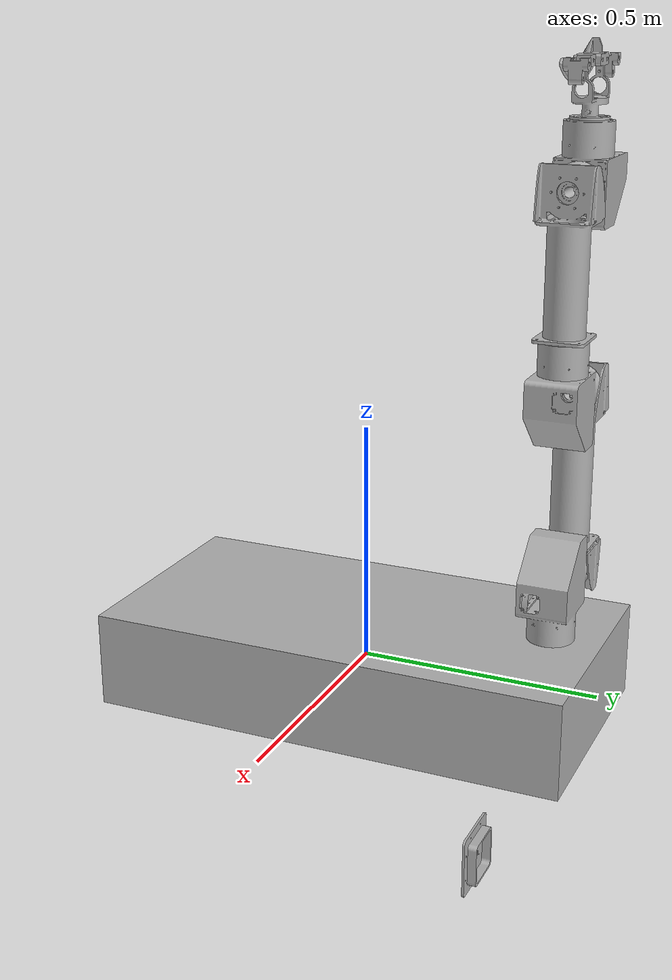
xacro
<?xml version="1.0" ?>
<robot name="onyx" xmlns:xacro="http://www.ros.org/wiki/xacro">

<xacro:include filename="$(find new_description)/urdf/materials.xacro" />
<xacro:include filename="$(find new_description)/urdf/onyx.gazebo" />
<xacro:include filename="$(find rover_description)/description/gazebo.ros2_control.xacro" />

<xacro:property name="rpm_to_Radps" value="${2*pi/60.0}" />     <!-- rotations per minute to Rad per second conversion -->
<xacro:property name="velocity_scaling" value="1.0" />     <!-- allows to scale all max velocities down at once -->

<xacro:macro name="aaa_joint_limits" params="lower:=0.0 upper:=0.0 velocity:=${rpm_to_Radps} effort:=100.0">
  <limit lower="${lower}" upper="${upper}" velocity="${velocity}" effort="${effort}"/>
</xacro:macro>

<xacro:property name="joint1_limits">
  <xacro:aaa_joint_limits lower="${-2*pi}" upper="${2*pi}" velocity="${1.83 * rpm_to_Radps * velocity_scaling}" />
</xacro:property>

<xacro:property name="joint2_limits">
  <xacro:aaa_joint_limits lower="${-pi}" upper="${pi}" velocity="${1.377 * rpm_to_Radps * velocity_scaling}" />
</xacro:property>

<xacro:property name="joint3_limits">
  <xacro:aaa_joint_limits lower="${-pi}" upper="${pi}" velocity="${1.377 * rpm_to_Radps * velocity_scaling}" />
</xacro:property>

<xacro:property name="joint4_limits">
  <xacro:aaa_joint_limits lower="${-2*pi}" upper="${2*pi}" velocity="${1.83 * rpm_to_Radps * velocity_scaling}" />
</xacro:property>

<xacro:property name="joint5_limits">
  <xacro:aaa_joint_limits lower="${-pi}" upper="${pi}" velocity="${1.83 * rpm_to_Radps * velocity_scaling}" />
</xacro:property>

<xacro:property name="joint6_limits">
  <xacro:aaa_joint_limits lower="${-2*pi}" upper="${2*pi}" velocity="${1.83 * rpm_to_Radps * velocity_scaling}" />
</xacro:property>

<link name="base_link">
  <inertial>
    <origin xyz="0 0 0" rpy="0 0 0"/>
    <mass value="10"/>
    <inertia ixx="0.866667" iyy="0.241667" izz="11.4583" ixy="0" iyz="0" ixz="0"/>
  </inertial>
  <visual>
    <origin xyz="0 0 0" rpy="0 0 0"/>
    <geometry>
      <box size="0.5 1 0.2"/>
    </geometry>
    <material name="silver"/>
  </visual>
  <collision>
    <origin xyz="0 0 0" rpy="0 0 0"/>
    <geometry>
      <box size="0.5 1 0.2"/>
    </geometry>
  </collision>
</link>

<link name="link0">
  <inertial>
    <origin xyz="1.1956123958086707e-13 -3.565798973482466e-17 0.006224605561972922" rpy="0 0 0"/>
    <mass value="1.001112718637754"/>
    <inertia ixx="0.00171" iyy="0.00171" izz="0.003332" ixy="-0.0" iyz="0.0" ixz="0.0"/>
  </inertial>
  <visual>
    <origin xyz="0 0 0" rpy="0 0 0"/>
    <geometry>
      <mesh filename="file://$(find new_description)/meshes/base_link.stl" scale="0.001 0.001 0.001"/>
    </geometry>
    <material name="silver"/>
  </visual>
  <collision>
    <origin xyz="0 0 0" rpy="0 0 0"/>
    <geometry>
      <mesh filename="file://$(find new_description)/meshes/base_link.stl" scale="0.001 0.001 0.001"/>
    </geometry>
  </collision>
</link>

<link name="link1">
  <inertial>
    <origin xyz="-0.02170210910358164 -0.00019279531117990834 -0.10150898066165266" rpy="0 0 0"/>
    <mass value="4.649589662802901"/>
    <inertia ixx="0.020834" iyy="0.028672" izz="0.018541" ixy="9.3e-05" iyz="8e-06" ixz="-0.002669"/>
  </inertial>
  <visual>
    <origin xyz="-0.0 -0.0 -0.0" rpy="0 0 0"/>
    <geometry>
      <mesh filename="file://$(find new_description)/meshes/1._J3_J4_v1_1.stl" scale="0.001 0.001 0.001"/>
    </geometry>
    <material name="silver"/>
  </visual>
  <collision>
    <origin xyz="-0.0 -0.0 -0.0" rpy="0 0 0"/>
    <geometry>
      <mesh filename="file://$(find new_description)/meshes/1._J3_J4_v1_1.stl" scale="0.001 0.001 0.001"/>
    </geometry>
  </collision>
</link>

<link name="link2">
  <inertial>
    <origin xyz="0.011067557585022744 -0.1859999999999968 -6.38378239159465e-16" rpy="0 0 0"/>
    <mass value="3.1139206406559206"/>
    <inertia ixx="0.069339" iyy="0.005977" izz="0.067529" ixy="-0.0" iyz="-0.0" ixz="0.0"/>
  </inertial>
  <visual>
    <origin xyz="0.1185 0.0 0.1185" rpy="0 0 0"/>
    <geometry>
      <mesh filename="file://$(find new_description)/meshes/1._bras_1_signle_component_v2_1.stl" scale="0.001 0.001 0.001"/>
    </geometry>
    <material name="silver"/>
  </visual>
  <collision>
    <origin xyz="0.1185 0.0 0.1185" rpy="0 0 0"/>
    <geometry>
      <mesh filename="file://$(find new_description)/meshes/1._bras_1_signle_component_v2_1.stl" scale="0.001 0.001 0.001"/>
    </geometry>
  </collision>
</link>

<link name="link3">
  <inertial>
    <origin xyz="0.09679789089640704 -0.016991019338346014 -0.0001927953111762748" rpy="0 0 0"/>
    <mass value="4.649589662802901"/>
    <inertia ixx="0.020834" iyy="0.018541" izz="0.028672" ixy="0.002669" iyz="-8e-06" ixz="9.3e-05"/>
  </inertial>
  <visual>
    <origin xyz="0.1185 0.372 0.1185" rpy="0 0 0"/>
    <geometry>
      <mesh filename="file://$(find new_description)/meshes/1._J3_J4_v1_3.stl" scale="0.001 0.001 0.001"/>
    </geometry>
    <material name="silver"/>
  </visual>
  <collision>
    <origin xyz="0.1185 0.372 0.1185" rpy="0 0 0"/>
    <geometry>
      <mesh filename="file://$(find new_description)/meshes/1._J3_J4_v1_3.stl" scale="0.001 0.001 0.001"/>
    </geometry>
  </collision>
</link>

<link name="link4">
  <inertial>
    <origin xyz="-7.62739739510274e-14 -0.15487679697152396 0.003331504937344451" rpy="0 0 0"/>
    <mass value="2.3051495546208427"/>
    <inertia ixx="0.026991" iyy="0.004302" izz="0.027883" ixy="-0.0" iyz="0.00098" ixz="0.0"/>
  </inertial>
  <visual>
    <origin xyz="0.0 0.4905 0.1185" rpy="0 0 0"/>
    <geometry>
      <mesh filename="file://$(find new_description)/meshes/1._bras_2_single_component_v2_1.stl" scale="0.001 0.001 0.001"/>
    </geometry>
    <material name="silver"/>
  </visual>
  <collision>
    <origin xyz="0.0 0.4905 0.1185" rpy="0 0 0"/>
    <geometry>
      <mesh filename="file://$(find new_description)/meshes/1._bras_2_single_component_v2_1.stl" scale="0.001 0.001 0.001"/>
    </geometry>
  </collision>
</link>

<link name="link5">
  <inertial>
    <origin xyz="-0.021702109103615613 -0.00019279531117755155 -0.10150898066164708" rpy="0 0 0"/>
    <mass value="4.649589662802901"/>
    <inertia ixx="0.020834" iyy="0.028672" izz="0.018541" ixy="9.3e-05" iyz="8e-06" ixz="-0.002669"/>
  </inertial>
  <visual>
    <origin xyz="0.0 0.7625 0.1025" rpy="0 0 0"/>
    <geometry>
      <mesh filename="file://$(find new_description)/meshes/1._J3_J4_v1_2.stl" scale="0.001 0.001 0.001"/>
    </geometry>
    <material name="silver"/>
  </visual>
  <collision>
    <origin xyz="0.0 0.7625 0.1025" rpy="0 0 0"/>
    <geometry>
      <mesh filename="file://$(find new_description)/meshes/1._J3_J4_v1_2.stl" scale="0.001 0.001 0.001"/>
    </geometry>
  </collision>
</link>

<link name="link6">
  <inertial>
    <origin xyz="-0.04986729813628965 -0.00013910374698444805 -0.00012272189332909744" rpy="0 0 0"/>
    <mass value="0.47056920048889883"/>
    <inertia ixx="0.000306" iyy="0.001335" izz="0.001186" ixy="-4e-06" iyz="0.0" ixz="-0.0"/>
  </inertial>
  <visual>
    <origin xyz="0.1185 0.7625 0.221" rpy="0 0 0"/>
    <geometry>
      <mesh filename="file://$(find new_description)/meshes/1._simplified_gripper_single_component_v5_1.stl" scale="0.001 0.001 0.001"/>
    </geometry>
    <material name="silver"/>
  </visual>
  <collision>
    <origin xyz="0.1185 0.7625 0.221" rpy="0 0 0"/>
    <geometry>
      <mesh filename="file://$(find new_description)/meshes/1._simplified_gripper_single_component_v5_1.stl" scale="0.001 0.001 0.001"/>
    </geometry>
  </collision>
</link>

<link name="Arm_A_v6_2">
  <inertial>
    <origin xyz="0.018951336567798988 -0.0037499223695921513 0.03443137459651863" rpy="0 0 0"/>
    <mass value="0.11091056155247334"/>
    <inertia ixx="0.000106" iyy="0.000118" izz="1.4e-05" ixy="-0.0" iyz="-0.0" ixz="1.1e-05"/>
  </inertial>
  <visual>
    <origin xyz="0.2232 0.78502 0.20602" rpy="0 0 0"/>
    <geometry>
      <mesh filename="file://$(find new_description)/meshes/Arm_A_v6_2.stl" scale="0.001 0.001 0.001"/>
    </geometry>
    <material name="silver"/>
  </visual>
  <collision>
    <origin xyz="0.2232 0.78502 0.20602" rpy="0 0 0"/>
    <geometry>
      <mesh filename="file://$(find new_description)/meshes/Arm_A_v6_2.stl" scale="0.001 0.001 0.001"/>
    </geometry>
  </collision>
</link>

<link name="Arm_A_v6_1">
  <inertial>
    <origin xyz="0.018951336567799487 -0.003749922521991911 -0.03443121948811595" rpy="0 0 0"/>
    <mass value="0.11091056155247334"/>
    <inertia ixx="0.000106" iyy="0.000118" izz="1.4e-05" ixy="0.0" iyz="-0.0" ixz="-1.1e-05"/>
  </inertial>
  <visual>
    <origin xyz="0.2232 0.78502 0.23602" rpy="0 0 0"/>
    <geometry>
      <mesh filename="file://$(find new_description)/meshes/Arm_A_v6_1.stl" scale="0.001 0.001 0.001"/>
    </geometry>
    <material name="silver"/>
  </visual>
  <collision>
    <origin xyz="0.2232 0.78502 0.23602" rpy="0 0 0"/>
    <geometry>
      <mesh filename="file://$(find new_description)/meshes/Arm_A_v6_1.stl" scale="0.001 0.001 0.001"/>
    </geometry>
  </collision>
</link>

<link name="Hand_v3_2">
  <inertial>
    <origin xyz="0.009334274146256122 0.022500077554207798 9.812474983245112e-06" rpy="0 0 0"/>
    <mass value="0.025619526396878787"/>
    <inertia ixx="4e-06" iyy="4e-06" izz="7e-06" ixy="0.0" iyz="0.0" ixz="0.0"/>
  </inertial>
  <visual>
    <origin xyz="0.220282 0.78502 0.11944" rpy="0 0 0"/>
    <geometry>
      <mesh filename="file://$(find new_description)/meshes/Hand_v3_2.stl" scale="0.001 0.001 0.001"/>
    </geometry>
    <material name="silver"/>
  </visual>
  <collision>
    <origin xyz="0.220282 0.78502 0.11944" rpy="0 0 0"/>
    <geometry>
      <mesh filename="file://$(find new_description)/meshes/Hand_v3_2.stl" scale="0.001 0.001 0.001"/>
    </geometry>
  </collision>
</link>

<link name="Hand_v3_1">
  <inertial>
    <origin xyz="0.009334274146256205 0.022500077554208908 9.462970156470796e-06" rpy="0 0 0"/>
    <mass value="0.025619526396878787"/>
    <inertia ixx="4e-06" iyy="4e-06" izz="7e-06" ixy="0.0" iyz="0.0" ixz="0.0"/>
  </inertial>
  <visual>
    <origin xyz="0.220282 0.78502 0.3226" rpy="0 0 0"/>
    <geometry>
      <mesh filename="file://$(find new_description)/meshes/Hand_v3_1.stl" scale="0.001 0.001 0.001"/>
    </geometry>
    <material name="silver"/>
  </visual>
  <collision>
    <origin xyz="0.220282 0.78502 0.3226" rpy="0 0 0"/>
    <geometry>
      <mesh filename="file://$(find new_description)/meshes/Hand_v3_1.stl" scale="0.001 0.001 0.001"/>
    </geometry>
  </collision>
</link>

<joint name="arm_fixation" type="fixed">
  <origin xyz="0.0 0.4 0.11" rpy="${pi} 0 0"/>
  <parent link="base_link"/>
  <child link="link0"/>
  <xacro:insert_block name="joint1_limits"/>
</joint>

<joint name="hd_joint1" type="revolute">
  <origin xyz="0.0 0.0 0.0" rpy="0 0 0"/>
  <parent link="link0"/>
  <child link="link1"/>
  <axis xyz="0.0 0.0 1.0"/>
  <xacro:insert_block name="joint1_limits"/>
</joint>

<joint name="hd_joint2" type="revolute">
  <origin xyz="-0.1185 -0.0 -0.1185" rpy="${pi/2} 0 0"/>
  <parent link="link1"/>
  <child link="link2"/>
  <axis xyz="1.0 -0.0 -0.0"/>
  <xacro:insert_block name="joint2_limits"/>
</joint>

<joint name="hd_joint3" type="revolute">
  <origin xyz="0.0 -0.372 0.0" rpy="0 0 0"/>
  <parent link="link2"/>
  <child link="link3"/>
  <axis xyz="-1.0 0.0 0.0"/>
  <xacro:insert_block name="joint3_limits"/>
</joint>

<joint name="hd_joint4" type="revolute">
  <origin xyz="0.1185 -0.1185 0.0" rpy="0 ${pi/2} 0"/>
  <parent link="link3"/>
  <child link="link4"/>
  <axis xyz="0.0 1.0 -0.0"/>
  <xacro:insert_block name="joint4_limits"/>
</joint>

<joint name="hd_joint5" type="revolute">
  <origin xyz="0.0 -0.272 0.016" rpy="0 0 ${pi/2}"/>
  <parent link="link4"/>
  <child link="link5"/>
  <axis xyz="-0.0 0.0 1.0"/>
  <xacro:insert_block name="joint5_limits"/>
</joint>

<joint name="hd_joint6" type="revolute">
  <origin xyz="-0.1185 0.0 -0.1185" rpy="0 0 0"/>
  <parent link="link5"/>
  <child link="link6"/>
  <axis xyz="1.0 -0.0 0.0"/>
  <xacro:insert_block name="joint6_limits"/>
</joint>

<joint name="finger_joint1" type="fixed">
  <origin xyz="-0.1047 -0.02252 0.01498" rpy="0 0 0"/>
  <parent link="link6"/>
  <child link="Arm_A_v6_2"/>
  <axis xyz="0.0 1.0 -0.0"/>
</joint>

<joint name="finger_joint2" type="fixed">
  <origin xyz="-0.1047 -0.02252 -0.01502" rpy="0 0 0"/>
  <parent link="link6"/>
  <child link="Arm_A_v6_1"/>
  <axis xyz="0.0 1.0 -0.0"/>
</joint>

<joint name="finger_joint3" type="fixed">
  <origin xyz="0.002918 0.0 0.08658" rpy="0 0 0"/>
  <parent link="Arm_A_v6_2"/>
  <child link="Hand_v3_2"/>
  <axis xyz="-0.0 -1.0 0.0"/>
</joint>

<joint name="finger_joint4" type="fixed">
  <origin xyz="0.002918 0.0 -0.08658" rpy="0 0 0"/>
  <parent link="Arm_A_v6_1"/>
  <child link="Hand_v3_1"/>
  <axis xyz="0.0 -1.0 0.0"/>
</joint>

</robot>

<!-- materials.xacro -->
<robot name="onyx" xmlns:xacro="http://www.ros.org/wiki/xacro" >

<material name="silver">
  <color rgba="0.700 0.700 0.700 1.000"/>
</material>

</robot>

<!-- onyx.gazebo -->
<robot name="onyx" xmlns:xacro="http://www.ros.org/wiki/xacro" >

<xacro:property name="body_color" value="Gazebo/Silver" />

<gazebo>
  <plugin name="control" filename="libgazebo_ros_control.so"/>
</gazebo>
<gazebo reference="link0">
  <material>${body_color}</material>
  <mu1>0.2</mu1>
  <mu2>0.2</mu2>
  <self_collide>true</self_collide>
  <gravity>true</gravity>
</gazebo>

<gazebo reference="link1">
  <material>${body_color}</material>
  <mu1>0.2</mu1>
  <mu2>0.2</mu2>
  <self_collide>true</self_collide>
</gazebo>

<gazebo reference="link2">
  <material>${body_color}</material>
  <mu1>0.2</mu1>
  <mu2>0.2</mu2>
  <self_collide>true</self_collide>
</gazebo>

<gazebo reference="link3">
  <material>${body_color}</material>
  <mu1>0.2</mu1>
  <mu2>0.2</mu2>
  <self_collide>true</self_collide>
</gazebo>

<gazebo reference="link4">
  <material>${body_color}</material>
  <mu1>0.2</mu1>
  <mu2>0.2</mu2>
  <self_collide>true</self_collide>
</gazebo>

<gazebo reference="link5">
  <material>${body_color}</material>
  <mu1>0.2</mu1>
  <mu2>0.2</mu2>
  <self_collide>true</self_collide>
</gazebo>

<gazebo reference="link6">
  <material>${body_color}</material>
  <mu1>0.2</mu1>
  <mu2>0.2</mu2>
  <self_collide>true</self_collide>
</gazebo>

<gazebo reference="Arm_A_v6_2">
  <material>${body_color}</material>
  <mu1>0.2</mu1>
  <mu2>0.2</mu2>
  <self_collide>true</self_collide>
</gazebo>

<gazebo reference="Arm_A_v6_1">
  <material>${body_color}</material>
  <mu1>0.2</mu1>
  <mu2>0.2</mu2>
  <self_collide>true</self_collide>
</gazebo>

<gazebo reference="Hand_v3_2">
  <material>${body_color}</material>
  <mu1>0.2</mu1>
  <mu2>0.2</mu2>
  <self_collide>true</self_collide>
</gazebo>

<gazebo reference="Hand_v3_1">
  <material>${body_color}</material>
  <mu1>0.2</mu1>
  <mu2>0.2</mu2>
  <self_collide>true</self_collide>
</gazebo>

</robot>
